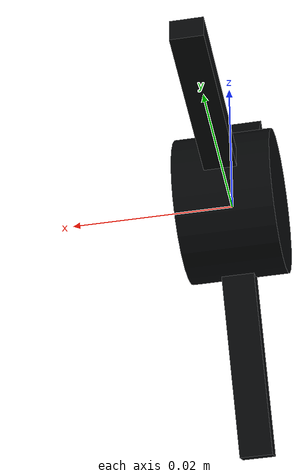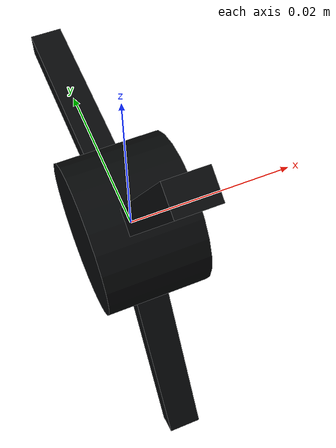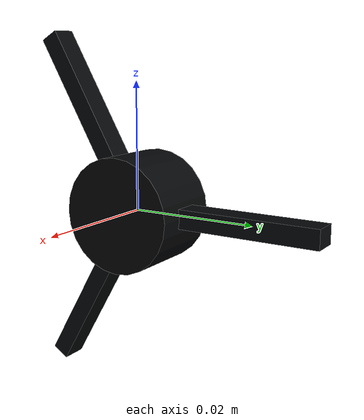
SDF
<?xml version="1.0"?>
<sdf version="1.9">
  <model name="gamantaray_propeller_ccw_visual">
    <static>true</static>
    <link name="link">
      <visual name="hub">
        <pose>0 0 0 0 1.5707963268 0</pose>
        <geometry>
          <cylinder>
            <radius>0.009</radius>
            <length>0.012</length>
          </cylinder>
        </geometry>
        <material>
          <ambient>0.015 0.018 0.020 1</ambient>
          <diffuse>0.020 0.026 0.030 1</diffuse>
          <specular>0.18 0.22 0.24 1</specular>
        </material>
      </visual>
      <visual name="propeller_visual">
        <pose>0 0.014 0 0 0 0</pose>
        <geometry>
          <box>
            <size>0.004 0.034 0.003</size>
          </box>
        </geometry>
        <material>
          <ambient>0.018 0.020 0.022 1</ambient>
          <diffuse>0.025 0.030 0.034 1</diffuse>
          <specular>0.18 0.22 0.24 1</specular>
        </material>
      </visual>
      <visual name="propeller_blade_2">
        <pose>0 -0.007 0.0121243557 2.0943951024 0 0</pose>
        <geometry>
          <box>
            <size>0.004 0.034 0.003</size>
          </box>
        </geometry>
        <material>
          <ambient>0.018 0.020 0.022 1</ambient>
          <diffuse>0.025 0.030 0.034 1</diffuse>
          <specular>0.18 0.22 0.24 1</specular>
        </material>
      </visual>
      <visual name="propeller_blade_3">
        <pose>0 -0.007 -0.0121243557 -2.0943951024 0 0</pose>
        <geometry>
          <box>
            <size>0.004 0.034 0.003</size>
          </box>
        </geometry>
        <material>
          <ambient>0.018 0.020 0.022 1</ambient>
          <diffuse>0.025 0.030 0.034 1</diffuse>
          <specular>0.18 0.22 0.24 1</specular>
        </material>
      </visual>
    </link>
  </model>
</sdf>
